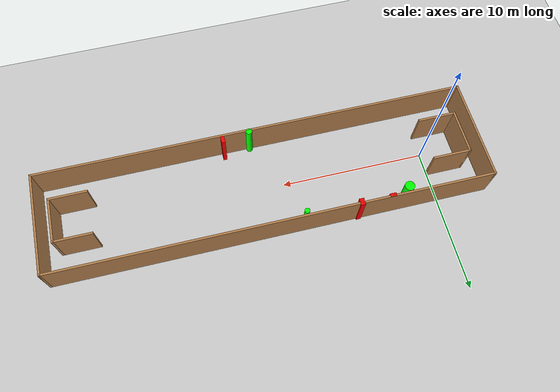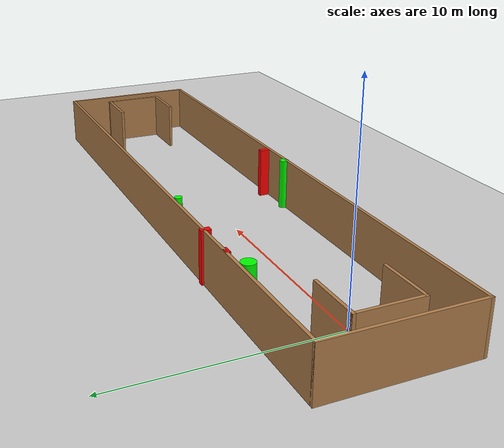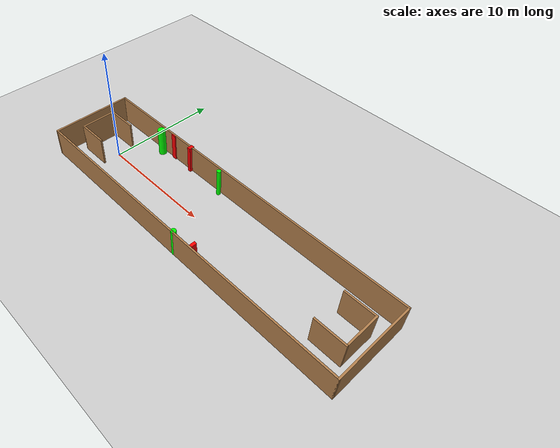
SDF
<sdf version="1.7">
 <world name="default">
  <light name="sun" type="directional">
   <pose>0 0 10 0 -0 0</pose>
   <diffuse>0.8 0.8 0.8 1</diffuse>
   <specular>0.2 0.2 0.2 1</specular>
   <attenuation>
    <range>1000</range>
    <constant>0.9</constant>
    <linear>0.01</linear>
    <quadratic>0.001</quadratic>
   </attenuation>
   <direction>-0.5 0.1 -0.9</direction>
   <spot><inner_angle>0</inner_angle><outer_angle>0</outer_angle><falloff>0</falloff></spot>
  </light>
  <model name="ground_plane">
   <static>1</static>
   <link name="link">
    <collision name="collision">
     <geometry><plane><normal>0 0 1</normal><size>100 100</size></plane></geometry>
     <surface>
      <contact><collide_bitmask>65535</collide_bitmask></contact>
      <friction><ode><mu>100</mu><mu2>50</mu2></ode></friction>
     </surface>
    </collision>
    <visual name="visual">
     <cast_shadows>0</cast_shadows>
     <geometry><plane><normal>0 0 1</normal><size>100 100</size></plane></geometry>
     <material>
      <script><uri>file://media/materials/scripts/gazebo.material</uri><name>Gazebo/Grey</name></script>
     </material>
    </visual>
   </link>
  </model>
  <gravity>0 0 -9.8</gravity>
  <magnetic_field>6e-06 2.3e-05 -4.2e-05</magnetic_field>
  <atmosphere type="adiabatic"/>
  <physics type="ode">
   <max_step_size>0.001</max_step_size>
   <real_time_factor>1</real_time_factor>
   <real_time_update_rate>1000</real_time_update_rate>
  </physics>
  <scene><ambient>0.4 0.4 0.4 1</ambient><background>0.7 0.7 0.7 1</background><shadows>1</shadows></scene>
  <spherical_coordinates>
   <surface_model>EARTH_WGS84</surface_model>
   <latitude_deg>0</latitude_deg>
   <longitude_deg>0</longitude_deg>
   <elevation>0</elevation>
   <heading_deg>0</heading_deg>
  </spherical_coordinates>
  <model name="my_base_walls">
   <link name="Wall_0">
    <collision name="Wall_0_Collision">
     <geometry><box><size>7.15 0.15 2.5</size></box></geometry>
     <pose>0 0 1.25 0 -0 0</pose>
    </collision>
    <visual name="Wall_0_Visual">
     <pose>0 0 1.25 0 -0 0</pose>
     <geometry><box><size>7.15 0.15 2.5</size></box></geometry>
     <material>
      <script><uri>file://media/materials/scripts/gazebo.material</uri><name>Gazebo/Wood</name></script>
      <ambient>1 1 1 1</ambient>
     </material>
     <meta><layer>0</layer></meta>
    </visual>
    <pose>-15 0 0 0 -0 1.5708</pose>
   </link>
   <link name="Wall_10">
    <collision name="Wall_10_Collision">
     <geometry><box><size>2.65 0.15 2.5</size></box></geometry>
     <pose>0 0 1.25 0 -0 0</pose>
    </collision>
    <visual name="Wall_10_Visual">
     <pose>0 0 1.25 0 -0 0</pose>
     <geometry><box><size>2.65 0.15 2.5</size></box></geometry>
     <material>
      <script><uri>file://media/materials/scripts/gazebo.material</uri><name>Gazebo/Wood</name></script>
      <ambient>1 1 1 1</ambient>
     </material>
     <meta><layer>0</layer></meta>
    </visual>
    <pose>-12.75 -1.5 0 0 -0 0</pose>
   </link>
   <link name="Wall_12">
    <collision name="Wall_12_Collision">
     <geometry><box><size>2.65 0.15 2.5</size></box></geometry>
     <pose>0 0 1.25 0 -0 0</pose>
    </collision>
    <visual name="Wall_12_Visual">
     <pose>0 0 1.25 0 -0 0</pose>
     <geometry><box><size>2.65 0.15 2.5</size></box></geometry>
     <material>
      <script><uri>file://media/materials/scripts/gazebo.material</uri><name>Gazebo/Wood</name></script>
      <ambient>1 1 1 1</ambient>
     </material>
     <meta><layer>0</layer></meta>
    </visual>
    <pose>-12.75 1.5 0 0 -0 0</pose>
   </link>
   <link name="Wall_14">
    <collision name="Wall_14_Collision">
     <geometry><box><size>3.15 0.15 2.5</size></box></geometry>
     <pose>0 0 1.25 0 -0 0</pose>
    </collision>
    <visual name="Wall_14_Visual">
     <pose>0 0 1.25 0 -0 0</pose>
     <geometry><box><size>3.15 0.15 2.5</size></box></geometry>
     <material>
      <script><uri>file://media/materials/scripts/gazebo.material</uri><name>Gazebo/Wood</name></script>
      <ambient>1 1 1 1</ambient>
     </material>
     <meta><layer>0</layer></meta>
    </visual>
    <pose>14 0 0 0 -0 -1.5708</pose>
   </link>
   <link name="Wall_15">
    <collision name="Wall_15_Collision">
     <geometry><box><size>2.65 0.15 2.5</size></box></geometry>
     <pose>0 0 1.25 0 -0 0</pose>
    </collision>
    <visual name="Wall_15_Visual">
     <pose>0 0 1.25 0 -0 0</pose>
     <geometry><box><size>2.65 0.15 2.5</size></box></geometry>
     <material>
      <script><uri>file://media/materials/scripts/gazebo.material</uri><name>Gazebo/Wood</name></script>
      <ambient>1 1 1 1</ambient>
     </material>
     <meta><layer>0</layer></meta>
    </visual>
    <pose>12.75 -1.5 0 0 -0 3.14159</pose>
   </link>
   <link name="Wall_17">
    <collision name="Wall_17_Collision">
     <geometry><box><size>2.65 0.15 2.5</size></box></geometry>
     <pose>0 0 1.25 0 -0 0</pose>
    </collision>
    <visual name="Wall_17_Visual">
     <pose>0 0 1.25 0 -0 0</pose>
     <geometry><box><size>2.65 0.15 2.5</size></box></geometry>
     <material>
      <script><uri>file://media/materials/scripts/gazebo.material</uri><name>Gazebo/Wood</name></script>
      <ambient>1 1 1 1</ambient>
     </material>
     <meta><layer>0</layer></meta>
    </visual>
    <pose>12.75 1.5 0 0 -0 3.14159</pose>
   </link>
   <link name="Wall_2">
    <collision name="Wall_2_Collision">
     <geometry><box><size>30.15 0.15 2.5</size></box></geometry>
     <pose>0 0 1.25 0 -0 0</pose>
    </collision>
    <visual name="Wall_2_Visual">
     <pose>0 0 1.25 0 -0 0</pose>
     <geometry><box><size>30.15 0.15 2.5</size></box></geometry>
     <material>
      <script><uri>file://media/materials/scripts/gazebo.material</uri><name>Gazebo/Wood</name></script>
      <ambient>1 1 1 1</ambient>
     </material>
     <meta><layer>0</layer></meta>
    </visual>
    <pose>-0 -3.5 0 0 -0 0</pose>
   </link>
   <link name="Wall_4">
    <collision name="Wall_4_Collision">
     <geometry><box><size>30.15 0.15 2.5</size></box></geometry>
     <pose>0 0 1.25 0 -0 0</pose>
    </collision>
    <visual name="Wall_4_Visual">
     <pose>0 0 1.25 0 -0 0</pose>
     <geometry><box><size>30.15 0.15 2.5</size></box></geometry>
     <material>
      <script><uri>file://media/materials/scripts/gazebo.material</uri><name>Gazebo/Wood</name></script>
      <ambient>1 1 1 1</ambient>
     </material>
     <meta><layer>0</layer></meta>
    </visual>
    <pose>-0 3.5 0 0 -0 0</pose>
   </link>
   <link name="Wall_6">
    <collision name="Wall_6_Collision">
     <geometry><box><size>7.15 0.15 2.5</size></box></geometry>
     <pose>0 0 1.25 0 -0 0</pose>
    </collision>
    <visual name="Wall_6_Visual">
     <pose>0 0 1.25 0 -0 0</pose>
     <geometry><box><size>7.15 0.15 2.5</size></box></geometry>
     <material>
      <script><uri>file://media/materials/scripts/gazebo.material</uri><name>Gazebo/Wood</name></script>
      <ambient>1 1 1 1</ambient>
     </material>
     <meta><layer>0</layer></meta>
    </visual>
    <pose>15 0 0 0 -0 -1.5708</pose>
   </link>
   <link name="Wall_9">
    <collision name="Wall_9_Collision">
     <geometry><box><size>3.15 0.15 2.5</size></box></geometry>
     <pose>0 0 1.25 0 -0 0</pose>
    </collision>
    <visual name="Wall_9_Visual">
     <pose>0 0 1.25 0 -0 0</pose>
     <geometry><box><size>3.15 0.15 2.5</size></box></geometry>
     <material>
      <script><uri>file://media/materials/scripts/gazebo.material</uri><name>Gazebo/Wood</name></script>
      <ambient>1 1 1 1</ambient>
     </material>
     <meta><layer>0</layer></meta>
    </visual>
    <pose>-14 0 0 0 -0 -1.5708</pose>
   </link>
   <static>1</static>
   <pose>11.5 0 0 0 -0 0</pose>
  </model>
  <model name="cylinder1">
   <static>1</static>
   <link name="link">
    <inertial>
     <mass>1</mass>
     <inertia><ixx>0.5</ixx><ixy>0</ixy><ixz>0</ixz><iyy>0.5</iyy><iyz>0</iyz><izz>1</izz></inertia>
    </inertial>
    <collision name="collision">
     <geometry><cylinder><radius>0.22024650446530225</radius><length>2.5</length></cylinder></geometry>
    </collision>
    <visual name="visual">
     <geometry><cylinder><radius>0.22024650446530225</radius><length>2.5</length></cylinder></geometry>
     <material>
      <ambient>0 1 0 1</ambient>
      <diffuse>0 1 0 1</diffuse>
      <specular>0.1 0.1 0.1 1</specular>
      <emissive>0 0 0 0</emissive>
     </material>
    </visual>
   </link>
   <pose>11.668015802256578 -3.3834448939099024 1.25 0 0 0</pose>
  </model>
  <model name="cylinder2">
   <static>1</static>
   <link name="link">
    <inertial>
     <mass>1</mass>
     <inertia><ixx>0.5</ixx><ixy>0</ixy><ixz>0</ixz><iyy>0.5</iyy><iyz>0</iyz><izz>1</izz></inertia>
    </inertial>
    <collision name="collision">
     <geometry><cylinder><radius>0.3339316558816422</radius><length>2.5</length></cylinder></geometry>
    </collision>
    <visual name="visual">
     <geometry><cylinder><radius>0.3339316558816422</radius><length>2.5</length></cylinder></geometry>
     <material>
      <ambient>0 1 0 1</ambient>
      <diffuse>0 1 0 1</diffuse>
      <specular>0.1 0.1 0.1 1</specular>
      <emissive>0 0 0 0</emissive>
     </material>
    </visual>
   </link>
   <pose>2.3137468654979454 3.0795904446340794 1.25 0 0 0</pose>
  </model>
  <model name="cylinder3">
   <static>1</static>
   <link name="link">
    <inertial>
     <mass>1</mass>
     <inertia><ixx>0.5</ixx><ixy>0</ixy><ixz>0</ixz><iyy>0.5</iyy><iyz>0</iyz><izz>1</izz></inertia>
    </inertial>
    <collision name="collision">
     <geometry><cylinder><radius>0.1796482875519023</radius><length>2.5</length></cylinder></geometry>
    </collision>
    <visual name="visual">
     <geometry><cylinder><radius>0.1796482875519023</radius><length>2.5</length></cylinder></geometry>
     <material>
      <ambient>0 1 0 1</ambient>
      <diffuse>0 1 0 1</diffuse>
      <specular>0.1 0.1 0.1 1</specular>
      <emissive>0 0 0 0</emissive>
     </material>
    </visual>
   </link>
   <pose>9.320321615901971 3.206741151810676 1.25 0 0 0</pose>
  </model>
  <model name="box1">
   <static>1</static>
   <link name="link">
    <inertial>
     <mass>1</mass>
     <inertia><ixx>0.083</ixx><ixy>0</ixy><ixz>0</ixz><iyy>0.083</iyy><iyz>0</iyz><izz>0.083</izz></inertia>
    </inertial>
    <collision name="collision">
     <geometry><box><size>0.25509402534149295 0.5092041580887382 2.5</size></box></geometry>
    </collision>
    <visual name="visual">
     <geometry><box><size>0.25509402534149295 0.5092041580887382 2.5</size></box></geometry>
     <material>
      <ambient>1 0 0 1</ambient>
      <diffuse>1 0 0 1</diffuse>
      <specular>0.1 0.1 0.1 1</specular>
      <emissive>0 0 0 0</emissive>
     </material>
    </visual>
    <sensor name="my_contact" type="contact">
     <contact><collision>box_collision</collision><topic>__default_topic__</topic></contact>
    </sensor>
   </link>
   <pose>13.534232437189196 -3.188081603371941 1.25 0 0 0</pose>
  </model>
  <model name="box2">
   <static>1</static>
   <link name="link">
    <inertial>
     <mass>1</mass>
     <inertia><ixx>0.083</ixx><ixy>0</ixy><ixz>0</ixz><iyy>0.083</iyy><iyz>0</iyz><izz>0.083</izz></inertia>
    </inertial>
    <collision name="collision">
     <geometry><box><size>0.4274611278864354 0.21557353152051317 2.5</size></box></geometry>
    </collision>
    <visual name="visual">
     <geometry><box><size>0.4274611278864354 0.21557353152051317 2.5</size></box></geometry>
     <material>
      <ambient>1 0 0 1</ambient>
      <diffuse>1 0 0 1</diffuse>
      <specular>0.1 0.1 0.1 1</specular>
      <emissive>0 0 0 0</emissive>
     </material>
    </visual>
    <sensor name="my_contact" type="contact">
     <contact><collision>box_collision</collision><topic>__default_topic__</topic></contact>
    </sensor>
   </link>
   <pose>3.570332702900677 3.4318820048503076 1.25 0 0 0</pose>
  </model>
  <model name="box3">
   <static>1</static>
   <link name="link">
    <inertial>
     <mass>1</mass>
     <inertia><ixx>0.083</ixx><ixy>0</ixy><ixz>0</ixz><iyy>0.083</iyy><iyz>0</iyz><izz>0.083</izz></inertia>
    </inertial>
    <collision name="collision">
     <geometry><box><size>0.3094546128947693 0.46290977909369047 2.5</size></box></geometry>
    </collision>
    <visual name="visual">
     <geometry><box><size>0.3094546128947693 0.46290977909369047 2.5</size></box></geometry>
     <material>
      <ambient>1 0 0 1</ambient>
      <diffuse>1 0 0 1</diffuse>
      <specular>0.1 0.1 0.1 1</specular>
      <emissive>0 0 0 0</emissive>
     </material>
    </visual>
    <sensor name="my_contact" type="contact">
     <contact><collision>box_collision</collision><topic>__default_topic__</topic></contact>
    </sensor>
   </link>
   <pose>5.677372461429226 3.4345141332087836 1.25 0 0 0</pose>
  </model>
 </world>
</sdf>
